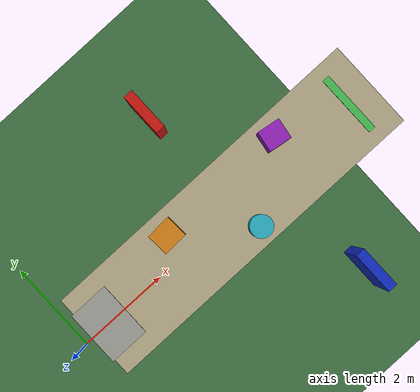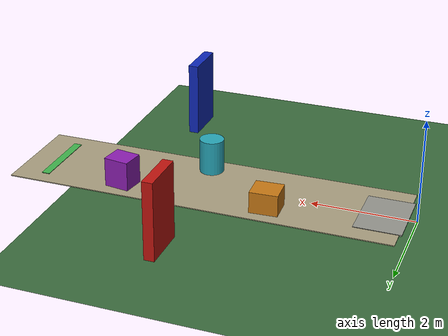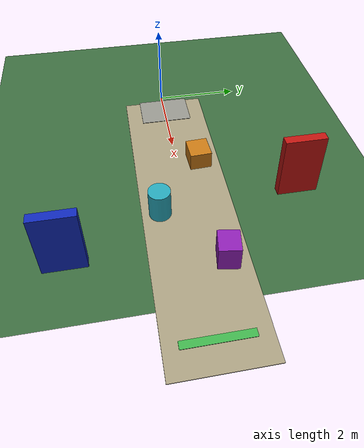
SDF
<?xml version="1.0"?>
<sdf version="1.6">
  <world name="mari_nav2_stage2_obstacles">
    <gravity>0 0 -9.80665</gravity>

    <spherical_coordinates>
      <heading_deg>180</heading_deg>
    </spherical_coordinates>

    <physics name="default_physics" default="true" type="ode">
      <max_step_size>0.001</max_step_size>
      <real_time_factor>1.0</real_time_factor>
      <real_time_update_rate>1000</real_time_update_rate>
    </physics>

    <scene>
      <ambient>0.60 0.61 0.58 1</ambient>
      <background>0.68 0.80 0.98 1</background>
      <shadows>true</shadows>
    </scene>

    <light name="sun" type="directional">
      <cast_shadows>true</cast_shadows>
      <pose>0 0 12 0 0 0</pose>
      <diffuse>0.95 0.92 0.84 1</diffuse>
      <specular>0.2 0.2 0.18 1</specular>
      <direction>-0.25 0.20 -0.94</direction>
    </light>

    <model name="stage2_ground">
      <static>true</static>
      <link name="link">
        <collision name="ground_collision">
          <geometry><plane><normal>0 0 1</normal><size>13 9</size></plane></geometry>
        </collision>
        <visual name="grass_visual">
          <geometry><plane><normal>0 0 1</normal><size>13 9</size></plane></geometry>
          <material><ambient>0.23 0.42 0.24 1</ambient><diffuse>0.23 0.42 0.24 1</diffuse></material>
        </visual>
      </link>
    </model>

    <model name="stage2_path">
      <static>true</static>
      <link name="link">
        <visual name="wide_path">
          <pose>4.0 0 0.010 0 0 0</pose>
          <geometry><box><size>7.6 2.0 0.018</size></box></geometry>
          <material><ambient>0.66 0.62 0.50 1</ambient><diffuse>0.66 0.62 0.50 1</diffuse></material>
        </visual>
        <visual name="start_pad">
          <pose>0.6 0 0.018 0 0 0</pose>
          <geometry><box><size>0.9 1.25 0.025</size></box></geometry>
          <material><ambient>0.58 0.58 0.55 1</ambient><diffuse>0.58 0.58 0.55 1</diffuse></material>
        </visual>
        <visual name="goal_band">
          <pose>7.2 0 0.020 0 0 0</pose>
          <geometry><box><size>0.16 1.4 0.022</size></box></geometry>
          <material><ambient>0.25 0.70 0.30 1</ambient><diffuse>0.25 0.70 0.30 1</diffuse></material>
        </visual>
      </link>
    </model>

    <model name="stage2_obstacle_box_left">
      <static>true</static>
      <pose>2.7 0.52 0.22 0 0 0.05</pose>
      <link name="link">
        <collision name="collision">
          <geometry><box><size>0.55 0.50 0.44</size></box></geometry>
        </collision>
        <visual name="visual">
          <geometry><box><size>0.55 0.50 0.44</size></box></geometry>
          <material><ambient>0.78 0.47 0.08 1</ambient><diffuse>0.78 0.47 0.08 1</diffuse></material>
        </visual>
      </link>
    </model>

    <model name="stage2_obstacle_cylinder_right">
      <static>true</static>
      <pose>4.2 -0.60 0.35 0 0 0</pose>
      <link name="link">
        <collision name="collision">
          <geometry><cylinder><radius>0.24</radius><length>0.70</length></cylinder></geometry>
        </collision>
        <visual name="visual">
          <geometry><cylinder><radius>0.24</radius><length>0.70</length></cylinder></geometry>
          <material><ambient>0.15 0.65 0.72 1</ambient><diffuse>0.15 0.65 0.72 1</diffuse></material>
        </visual>
      </link>
    </model>

    <model name="stage2_obstacle_box_far">
      <static>true</static>
      <pose>5.6 0.55 0.30 0 0 -0.15</pose>
      <link name="link">
        <collision name="collision">
          <geometry><box><size>0.50 0.45 0.60</size></box></geometry>
        </collision>
        <visual name="visual">
          <geometry><box><size>0.50 0.45 0.60</size></box></geometry>
          <material><ambient>0.55 0.12 0.70 1</ambient><diffuse>0.55 0.12 0.70 1</diffuse></material>
        </visual>
      </link>
    </model>

    <model name="stage2_side_landmarks">
      <static>true</static>
      <link name="link">
        <visual name="red_panel">
          <pose>4.0 2.5 0.75 0 0 0</pose>
          <geometry><box><size>0.20 0.90 1.50</size></box></geometry>
          <material><ambient>0.75 0.08 0.06 1</ambient><diffuse>0.75 0.08 0.06 1</diffuse></material>
        </visual>
        <visual name="blue_panel">
          <pose>5.2 -2.6 0.75 0 0 0</pose>
          <geometry><box><size>0.20 0.90 1.50</size></box></geometry>
          <material><ambient>0.06 0.16 0.72 1</ambient><diffuse>0.06 0.16 0.72 1</diffuse></material>
        </visual>
      </link>
    </model>
  </world>
</sdf>
